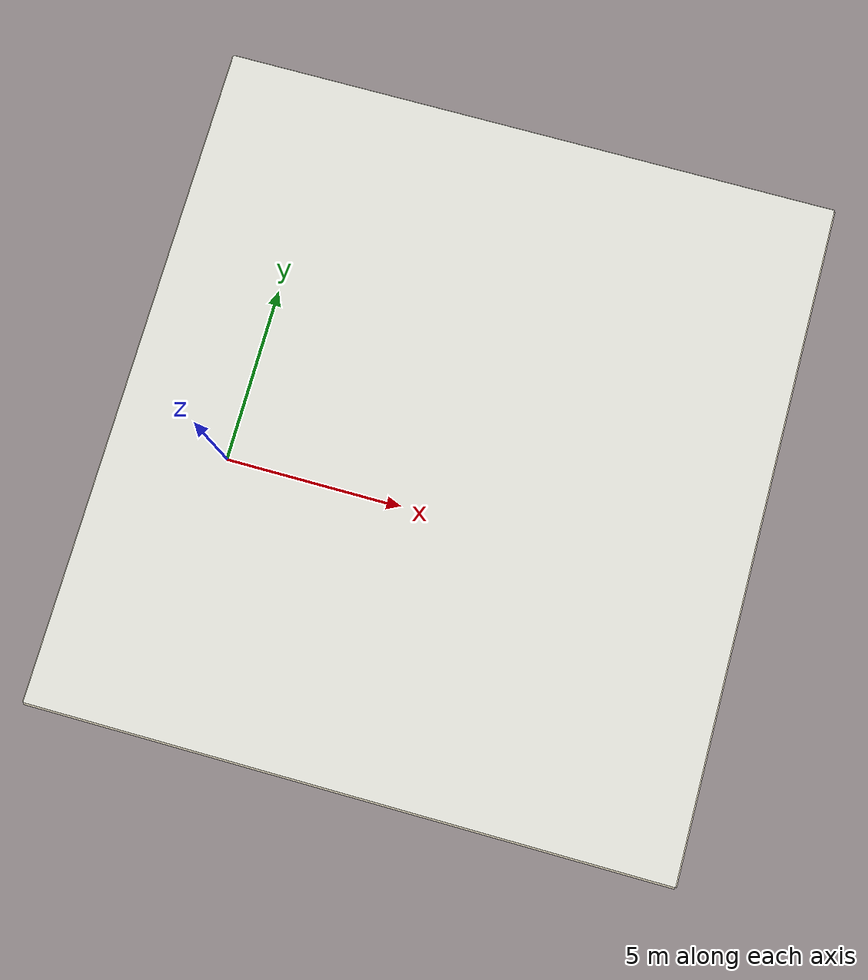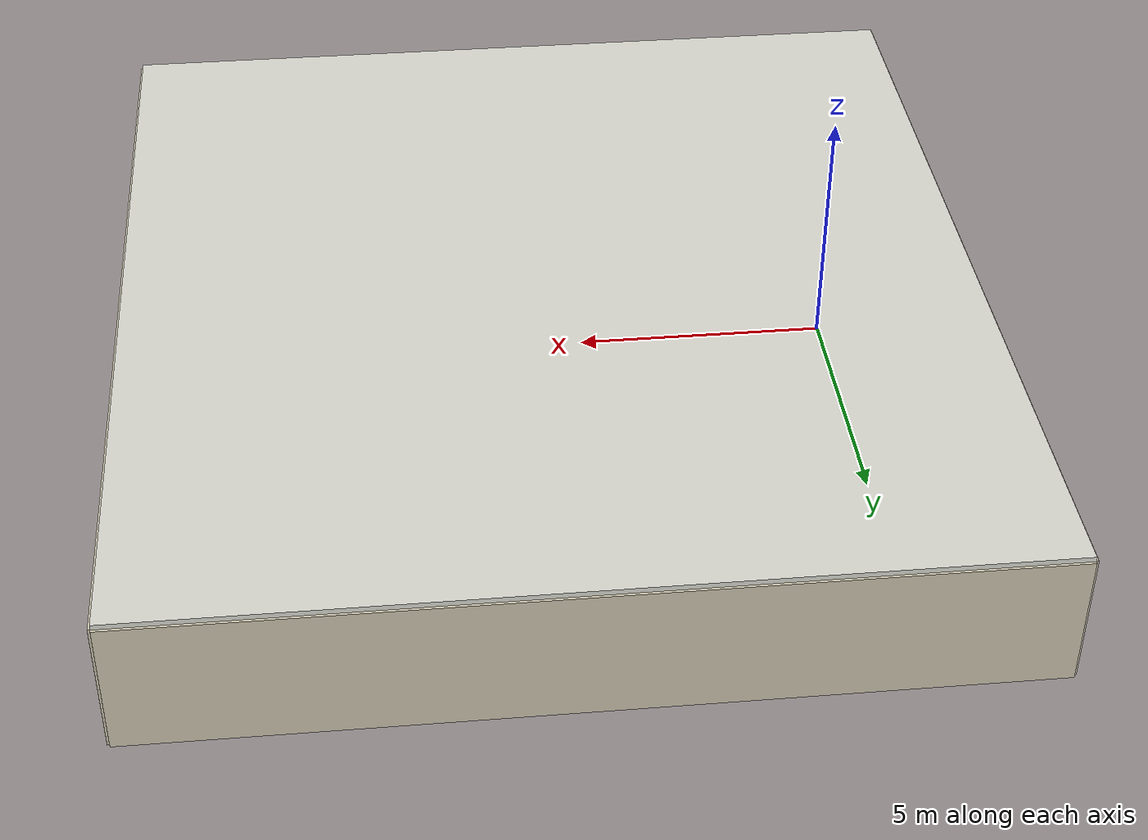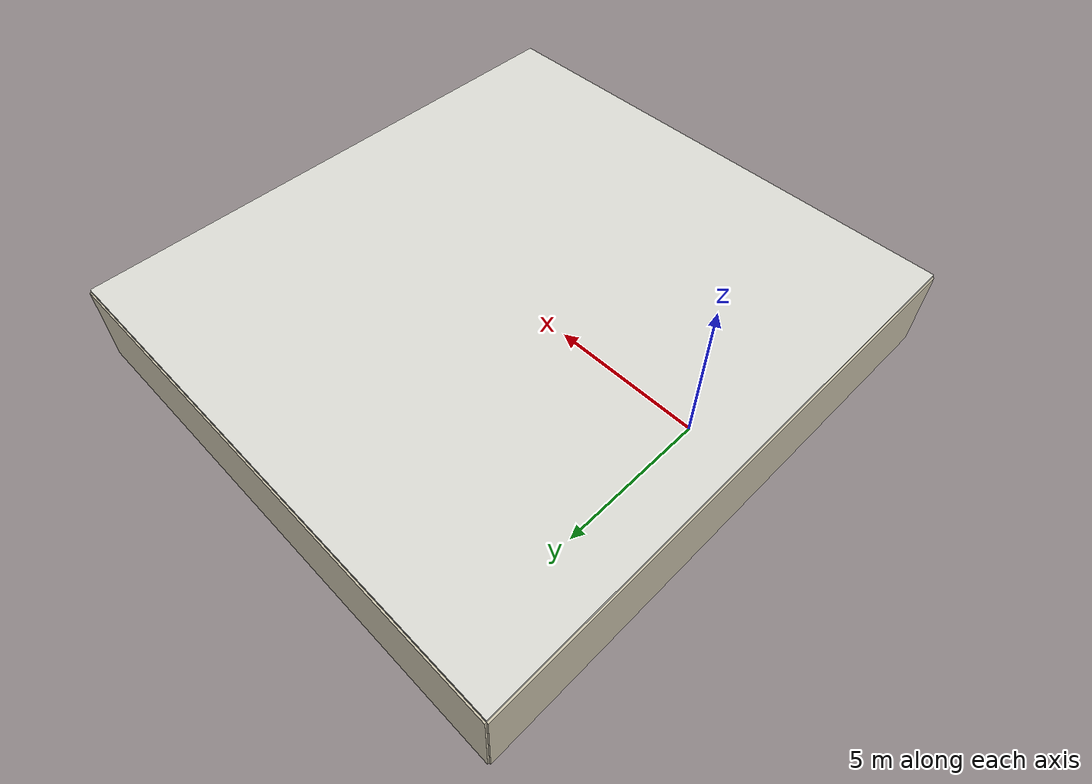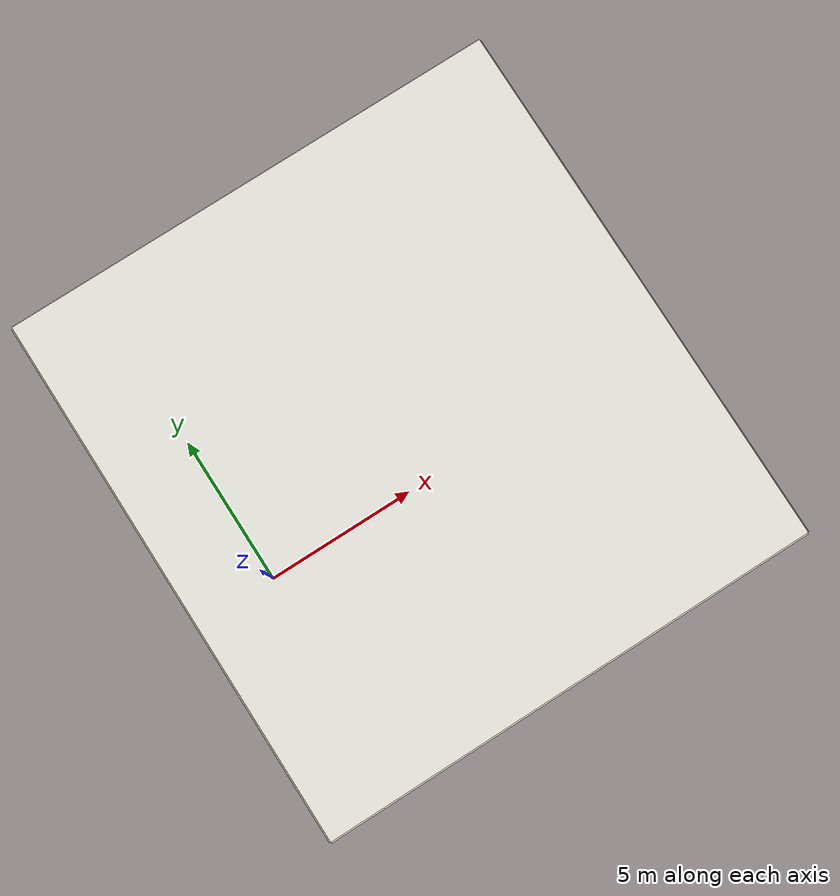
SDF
<?xml version="1.0" ?>
<sdf version='1.7'>
  <world name='default'>
    <plugin name='gazebo_ros_state' filename='libgazebo_ros_state.so'>
      <ros>
        <namespace>/</namespace>
      </ros>
      <update_rate>1000.0</update_rate>
    </plugin>

    <light name='sun' type='directional'>
      <cast_shadows>1</cast_shadows>
      <pose>0 0 10 0 -0 0</pose>
      <diffuse>0.34 0.34 0.33 1</diffuse>
      <specular>0.2 0.2 0.2 1</specular>
      <attenuation>
        <range>1000</range>
        <constant>0.9</constant>
        <linear>0.01</linear>
        <quadratic>0.001</quadratic>
      </attenuation>
      <direction>0.05 0.02 -1.0</direction>
      <spot>
        <inner_angle>0</inner_angle>
        <outer_angle>0</outer_angle>
        <falloff>0</falloff>
      </spot>
    </light>
    <model name='ground_plane'>
      <static>1</static>
      <link name='link'>
        <collision name='collision'>
          <geometry>
            <plane>
              <normal>0 0 1</normal>
              <size>100 100</size>
            </plane>
          </geometry>
          <surface>
            <friction>
              <ode>
                <mu>100</mu>
                <mu2>50</mu2>
              </ode>
              <torsional>
                <ode/>
              </torsional>
            </friction>
            <contact>
              <ode/>
            </contact>
            <bounce/>
          </surface>
          <max_contacts>10</max_contacts>
        </collision>
        <self_collide>0</self_collide>
        <enable_wind>0</enable_wind>
        <kinematic>0</kinematic>
      </link>
    </model>
    <gravity>0 0 -9.8</gravity>
    <magnetic_field>6e-06 2.3e-05 -4.2e-05</magnetic_field>
    <atmosphere type='adiabatic'/>
    <physics type='ode'>
      <max_step_size>0.001</max_step_size>
      <real_time_factor>1</real_time_factor>
      <real_time_update_rate>1000</real_time_update_rate>
    </physics>
    <scene>
      <ambient>0.74 0.74 0.72 1</ambient>
      <background>0.80 0.77 0.68 1</background>
      <shadows>1</shadows>
    </scene>
    <audio>
      <device>default</device>
    </audio>
    <wind/>
    <spherical_coordinates>
      <surface_model>EARTH_WGS84</surface_model>
      <latitude_deg>0</latitude_deg>
      <longitude_deg>0</longitude_deg>
      <elevation>0</elevation>
      <heading_deg>0</heading_deg>
    </spherical_coordinates>
    <model name='lab_19'>
    <static>1</static>
    <pose>0 0 0.001 0 0 0</pose>
    <link name='floor'>
      <visual name='floor_visual'>
        <cast_shadows>0</cast_shadows>
        <geometry><mesh><uri>model://lab_19/meshes/floor.obj</uri></mesh></geometry>
      </visual>
    </link>
    <link name='ducts'>
      <visual name='ducts_visual'>
        <geometry><mesh><uri>model://lab_19/meshes/ducts.obj</uri></mesh></geometry>
      </visual>
      <collision name='ducts_collision'>
        <geometry><mesh><uri>model://lab_19/meshes/ducts.obj</uri></mesh></geometry>
      </collision>
    </link>
    <link name='wall_0'>
      <pose>5.798 10.311 1.350 0 0 0.000</pose>
      <visual name='wall_0_visual'>
        <cast_shadows>0</cast_shadows>
        <geometry><box><size>16.623 0.100 2.700</size></box></geometry>
        <material><ambient>0.80 0.77 0.68 1</ambient><diffuse>0.80 0.77 0.68 1</diffuse></material>
      </visual>
    </link>
    <link name='wall_1'>
      <pose>5.798 -7.554 1.350 0 0 0.000</pose>
      <visual name='wall_1_visual'>
        <cast_shadows>0</cast_shadows>
        <geometry><box><size>16.623 0.100 2.700</size></box></geometry>
        <material><ambient>0.80 0.77 0.68 1</ambient><diffuse>0.80 0.77 0.68 1</diffuse></material>
      </visual>
    </link>
    <link name='wall_2'>
      <pose>-2.513 1.379 1.350 0 0 0.000</pose>
      <visual name='wall_2_visual'>
        <cast_shadows>0</cast_shadows>
        <geometry><box><size>0.100 17.864 2.700</size></box></geometry>
        <material><ambient>0.80 0.77 0.68 1</ambient><diffuse>0.80 0.77 0.68 1</diffuse></material>
      </visual>
    </link>
    <link name='wall_3'>
      <pose>14.110 1.379 1.350 0 0 0.000</pose>
      <visual name='wall_3_visual'>
        <cast_shadows>0</cast_shadows>
        <geometry><box><size>0.100 17.864 2.700</size></box></geometry>
        <material><ambient>0.80 0.77 0.68 1</ambient><diffuse>0.80 0.77 0.68 1</diffuse></material>
      </visual>
    </link>
    <link name='ceiling'>
      <pose>5.798 1.379 2.750 0 0 0.000</pose>
      <visual name='ceiling_visual'>
        <cast_shadows>0</cast_shadows>
        <geometry><box><size>16.623 17.864 0.100</size></box></geometry>
        <material><ambient>0.85 0.85 0.82 1</ambient><diffuse>0.85 0.85 0.82 1</diffuse></material>
      </visual>
    </link>
    <link name='panel_0_0'>
      <pose>-1.013 -6.054 2.690 0 0 0.000</pose>
      <visual name='panel_0_0_visual'>
        <cast_shadows>0</cast_shadows>
        <geometry><box><size>1.200 0.600 0.020</size></box></geometry>
        <material><ambient>1.00 1.00 1.00 1</ambient><diffuse>1.00 1.00 1.00 1</diffuse><emissive>1.00 1.00 1.00 1</emissive></material>
      </visual>
    </link>
    <link name='panel_0_1'>
      <pose>-1.013 -3.654 2.690 0 0 0.000</pose>
      <visual name='panel_0_1_visual'>
        <cast_shadows>0</cast_shadows>
        <geometry><box><size>1.200 0.600 0.020</size></box></geometry>
        <material><ambient>1.00 1.00 1.00 1</ambient><diffuse>1.00 1.00 1.00 1</diffuse><emissive>1.00 1.00 1.00 1</emissive></material>
      </visual>
    </link>
    <link name='panel_0_2'>
      <pose>-1.013 -1.254 2.690 0 0 0.000</pose>
      <visual name='panel_0_2_visual'>
        <cast_shadows>0</cast_shadows>
        <geometry><box><size>1.200 0.600 0.020</size></box></geometry>
        <material><ambient>1.00 1.00 1.00 1</ambient><diffuse>1.00 1.00 1.00 1</diffuse><emissive>1.00 1.00 1.00 1</emissive></material>
      </visual>
    </link>
    <link name='panel_0_3'>
      <pose>-1.013 1.146 2.690 0 0 0.000</pose>
      <visual name='panel_0_3_visual'>
        <cast_shadows>0</cast_shadows>
        <geometry><box><size>1.200 0.600 0.020</size></box></geometry>
        <material><ambient>1.00 1.00 1.00 1</ambient><diffuse>1.00 1.00 1.00 1</diffuse><emissive>1.00 1.00 1.00 1</emissive></material>
      </visual>
    </link>
    <link name='panel_0_4'>
      <pose>-1.013 3.546 2.690 0 0 0.000</pose>
      <visual name='panel_0_4_visual'>
        <cast_shadows>0</cast_shadows>
        <geometry><box><size>1.200 0.600 0.020</size></box></geometry>
        <material><ambient>1.00 1.00 1.00 1</ambient><diffuse>1.00 1.00 1.00 1</diffuse><emissive>1.00 1.00 1.00 1</emissive></material>
      </visual>
    </link>
    <link name='panel_0_5'>
      <pose>-1.013 5.946 2.690 0 0 0.000</pose>
      <visual name='panel_0_5_visual'>
        <cast_shadows>0</cast_shadows>
        <geometry><box><size>1.200 0.600 0.020</size></box></geometry>
        <material><ambient>1.00 1.00 1.00 1</ambient><diffuse>1.00 1.00 1.00 1</diffuse><emissive>1.00 1.00 1.00 1</emissive></material>
      </visual>
    </link>
    <link name='panel_0_6'>
      <pose>-1.013 8.346 2.690 0 0 0.000</pose>
      <visual name='panel_0_6_visual'>
        <cast_shadows>0</cast_shadows>
        <geometry><box><size>1.200 0.600 0.020</size></box></geometry>
        <material><ambient>1.00 1.00 1.00 1</ambient><diffuse>1.00 1.00 1.00 1</diffuse><emissive>1.00 1.00 1.00 1</emissive></material>
      </visual>
    </link>
    <link name='panel_1_0'>
      <pose>1.387 -6.054 2.690 0 0 0.000</pose>
      <visual name='panel_1_0_visual'>
        <cast_shadows>0</cast_shadows>
        <geometry><box><size>1.200 0.600 0.020</size></box></geometry>
        <material><ambient>1.00 1.00 1.00 1</ambient><diffuse>1.00 1.00 1.00 1</diffuse><emissive>1.00 1.00 1.00 1</emissive></material>
      </visual>
    </link>
    <link name='panel_1_1'>
      <pose>1.387 -3.654 2.690 0 0 0.000</pose>
      <visual name='panel_1_1_visual'>
        <cast_shadows>0</cast_shadows>
        <geometry><box><size>1.200 0.600 0.020</size></box></geometry>
        <material><ambient>1.00 1.00 1.00 1</ambient><diffuse>1.00 1.00 1.00 1</diffuse><emissive>1.00 1.00 1.00 1</emissive></material>
      </visual>
    </link>
    <link name='panel_1_2'>
      <pose>1.387 -1.254 2.690 0 0 0.000</pose>
      <visual name='panel_1_2_visual'>
        <cast_shadows>0</cast_shadows>
        <geometry><box><size>1.200 0.600 0.020</size></box></geometry>
        <material><ambient>1.00 1.00 1.00 1</ambient><diffuse>1.00 1.00 1.00 1</diffuse><emissive>1.00 1.00 1.00 1</emissive></material>
      </visual>
    </link>
    <link name='panel_1_3'>
      <pose>1.387 1.146 2.690 0 0 0.000</pose>
      <visual name='panel_1_3_visual'>
        <cast_shadows>0</cast_shadows>
        <geometry><box><size>1.200 0.600 0.020</size></box></geometry>
        <material><ambient>1.00 1.00 1.00 1</ambient><diffuse>1.00 1.00 1.00 1</diffuse><emissive>1.00 1.00 1.00 1</emissive></material>
      </visual>
    </link>
    <link name='panel_1_4'>
      <pose>1.387 3.546 2.690 0 0 0.000</pose>
      <visual name='panel_1_4_visual'>
        <cast_shadows>0</cast_shadows>
        <geometry><box><size>1.200 0.600 0.020</size></box></geometry>
        <material><ambient>1.00 1.00 1.00 1</ambient><diffuse>1.00 1.00 1.00 1</diffuse><emissive>1.00 1.00 1.00 1</emissive></material>
      </visual>
    </link>
    <link name='panel_1_5'>
      <pose>1.387 5.946 2.690 0 0 0.000</pose>
      <visual name='panel_1_5_visual'>
        <cast_shadows>0</cast_shadows>
        <geometry><box><size>1.200 0.600 0.020</size></box></geometry>
        <material><ambient>1.00 1.00 1.00 1</ambient><diffuse>1.00 1.00 1.00 1</diffuse><emissive>1.00 1.00 1.00 1</emissive></material>
      </visual>
    </link>
    <link name='panel_1_6'>
      <pose>1.387 8.346 2.690 0 0 0.000</pose>
      <visual name='panel_1_6_visual'>
        <cast_shadows>0</cast_shadows>
        <geometry><box><size>1.200 0.600 0.020</size></box></geometry>
        <material><ambient>1.00 1.00 1.00 1</ambient><diffuse>1.00 1.00 1.00 1</diffuse><emissive>1.00 1.00 1.00 1</emissive></material>
      </visual>
    </link>
    <link name='panel_2_0'>
      <pose>3.787 -6.054 2.690 0 0 0.000</pose>
      <visual name='panel_2_0_visual'>
        <cast_shadows>0</cast_shadows>
        <geometry><box><size>1.200 0.600 0.020</size></box></geometry>
        <material><ambient>1.00 1.00 1.00 1</ambient><diffuse>1.00 1.00 1.00 1</diffuse><emissive>1.00 1.00 1.00 1</emissive></material>
      </visual>
    </link>
    <link name='panel_2_1'>
      <pose>3.787 -3.654 2.690 0 0 0.000</pose>
      <visual name='panel_2_1_visual'>
        <cast_shadows>0</cast_shadows>
        <geometry><box><size>1.200 0.600 0.020</size></box></geometry>
        <material><ambient>1.00 1.00 1.00 1</ambient><diffuse>1.00 1.00 1.00 1</diffuse><emissive>1.00 1.00 1.00 1</emissive></material>
      </visual>
    </link>
    <link name='panel_2_2'>
      <pose>3.787 -1.254 2.690 0 0 0.000</pose>
      <visual name='panel_2_2_visual'>
        <cast_shadows>0</cast_shadows>
        <geometry><box><size>1.200 0.600 0.020</size></box></geometry>
        <material><ambient>1.00 1.00 1.00 1</ambient><diffuse>1.00 1.00 1.00 1</diffuse><emissive>1.00 1.00 1.00 1</emissive></material>
      </visual>
    </link>
    <link name='panel_2_3'>
      <pose>3.787 1.146 2.690 0 0 0.000</pose>
      <visual name='panel_2_3_visual'>
        <cast_shadows>0</cast_shadows>
        <geometry><box><size>1.200 0.600 0.020</size></box></geometry>
        <material><ambient>1.00 1.00 1.00 1</ambient><diffuse>1.00 1.00 1.00 1</diffuse><emissive>1.00 1.00 1.00 1</emissive></material>
      </visual>
    </link>
    <link name='panel_2_4'>
      <pose>3.787 3.546 2.690 0 0 0.000</pose>
      <visual name='panel_2_4_visual'>
        <cast_shadows>0</cast_shadows>
        <geometry><box><size>1.200 0.600 0.020</size></box></geometry>
        <material><ambient>1.00 1.00 1.00 1</ambient><diffuse>1.00 1.00 1.00 1</diffuse><emissive>1.00 1.00 1.00 1</emissive></material>
      </visual>
    </link>
    <link name='panel_2_5'>
      <pose>3.787 5.946 2.690 0 0 0.000</pose>
      <visual name='panel_2_5_visual'>
        <cast_shadows>0</cast_shadows>
        <geometry><box><size>1.200 0.600 0.020</size></box></geometry>
        <material><ambient>1.00 1.00 1.00 1</ambient><diffuse>1.00 1.00 1.00 1</diffuse><emissive>1.00 1.00 1.00 1</emissive></material>
      </visual>
    </link>
    <link name='panel_2_6'>
      <pose>3.787 8.346 2.690 0 0 0.000</pose>
      <visual name='panel_2_6_visual'>
        <cast_shadows>0</cast_shadows>
        <geometry><box><size>1.200 0.600 0.020</size></box></geometry>
        <material><ambient>1.00 1.00 1.00 1</ambient><diffuse>1.00 1.00 1.00 1</diffuse><emissive>1.00 1.00 1.00 1</emissive></material>
      </visual>
    </link>
    <link name='panel_3_0'>
      <pose>6.187 -6.054 2.690 0 0 0.000</pose>
      <visual name='panel_3_0_visual'>
        <cast_shadows>0</cast_shadows>
        <geometry><box><size>1.200 0.600 0.020</size></box></geometry>
        <material><ambient>1.00 1.00 1.00 1</ambient><diffuse>1.00 1.00 1.00 1</diffuse><emissive>1.00 1.00 1.00 1</emissive></material>
      </visual>
    </link>
    <link name='panel_3_1'>
      <pose>6.187 -3.654 2.690 0 0 0.000</pose>
      <visual name='panel_3_1_visual'>
        <cast_shadows>0</cast_shadows>
        <geometry><box><size>1.200 0.600 0.020</size></box></geometry>
        <material><ambient>1.00 1.00 1.00 1</ambient><diffuse>1.00 1.00 1.00 1</diffuse><emissive>1.00 1.00 1.00 1</emissive></material>
      </visual>
    </link>
    <link name='panel_3_2'>
      <pose>6.187 -1.254 2.690 0 0 0.000</pose>
      <visual name='panel_3_2_visual'>
        <cast_shadows>0</cast_shadows>
        <geometry><box><size>1.200 0.600 0.020</size></box></geometry>
        <material><ambient>1.00 1.00 1.00 1</ambient><diffuse>1.00 1.00 1.00 1</diffuse><emissive>1.00 1.00 1.00 1</emissive></material>
      </visual>
    </link>
    <link name='panel_3_3'>
      <pose>6.187 1.146 2.690 0 0 0.000</pose>
      <visual name='panel_3_3_visual'>
        <cast_shadows>0</cast_shadows>
        <geometry><box><size>1.200 0.600 0.020</size></box></geometry>
        <material><ambient>1.00 1.00 1.00 1</ambient><diffuse>1.00 1.00 1.00 1</diffuse><emissive>1.00 1.00 1.00 1</emissive></material>
      </visual>
    </link>
    <link name='panel_3_4'>
      <pose>6.187 3.546 2.690 0 0 0.000</pose>
      <visual name='panel_3_4_visual'>
        <cast_shadows>0</cast_shadows>
        <geometry><box><size>1.200 0.600 0.020</size></box></geometry>
        <material><ambient>1.00 1.00 1.00 1</ambient><diffuse>1.00 1.00 1.00 1</diffuse><emissive>1.00 1.00 1.00 1</emissive></material>
      </visual>
    </link>
    <link name='panel_3_5'>
      <pose>6.187 5.946 2.690 0 0 0.000</pose>
      <visual name='panel_3_5_visual'>
        <cast_shadows>0</cast_shadows>
        <geometry><box><size>1.200 0.600 0.020</size></box></geometry>
        <material><ambient>1.00 1.00 1.00 1</ambient><diffuse>1.00 1.00 1.00 1</diffuse><emissive>1.00 1.00 1.00 1</emissive></material>
      </visual>
    </link>
    <link name='panel_3_6'>
      <pose>6.187 8.346 2.690 0 0 0.000</pose>
      <visual name='panel_3_6_visual'>
        <cast_shadows>0</cast_shadows>
        <geometry><box><size>1.200 0.600 0.020</size></box></geometry>
        <material><ambient>1.00 1.00 1.00 1</ambient><diffuse>1.00 1.00 1.00 1</diffuse><emissive>1.00 1.00 1.00 1</emissive></material>
      </visual>
    </link>
    <link name='panel_4_0'>
      <pose>8.587 -6.054 2.690 0 0 0.000</pose>
      <visual name='panel_4_0_visual'>
        <cast_shadows>0</cast_shadows>
        <geometry><box><size>1.200 0.600 0.020</size></box></geometry>
        <material><ambient>1.00 1.00 1.00 1</ambient><diffuse>1.00 1.00 1.00 1</diffuse><emissive>1.00 1.00 1.00 1</emissive></material>
      </visual>
    </link>
    <link name='panel_4_1'>
      <pose>8.587 -3.654 2.690 0 0 0.000</pose>
      <visual name='panel_4_1_visual'>
        <cast_shadows>0</cast_shadows>
        <geometry><box><size>1.200 0.600 0.020</size></box></geometry>
        <material><ambient>1.00 1.00 1.00 1</ambient><diffuse>1.00 1.00 1.00 1</diffuse><emissive>1.00 1.00 1.00 1</emissive></material>
      </visual>
    </link>
    <link name='panel_4_2'>
      <pose>8.587 -1.254 2.690 0 0 0.000</pose>
      <visual name='panel_4_2_visual'>
        <cast_shadows>0</cast_shadows>
        <geometry><box><size>1.200 0.600 0.020</size></box></geometry>
        <material><ambient>1.00 1.00 1.00 1</ambient><diffuse>1.00 1.00 1.00 1</diffuse><emissive>1.00 1.00 1.00 1</emissive></material>
      </visual>
    </link>
    <link name='panel_4_3'>
      <pose>8.587 1.146 2.690 0 0 0.000</pose>
      <visual name='panel_4_3_visual'>
        <cast_shadows>0</cast_shadows>
        <geometry><box><size>1.200 0.600 0.020</size></box></geometry>
        <material><ambient>1.00 1.00 1.00 1</ambient><diffuse>1.00 1.00 1.00 1</diffuse><emissive>1.00 1.00 1.00 1</emissive></material>
      </visual>
    </link>
    <link name='panel_4_4'>
      <pose>8.587 3.546 2.690 0 0 0.000</pose>
      <visual name='panel_4_4_visual'>
        <cast_shadows>0</cast_shadows>
        <geometry><box><size>1.200 0.600 0.020</size></box></geometry>
        <material><ambient>1.00 1.00 1.00 1</ambient><diffuse>1.00 1.00 1.00 1</diffuse><emissive>1.00 1.00 1.00 1</emissive></material>
      </visual>
    </link>
    <link name='panel_4_5'>
      <pose>8.587 5.946 2.690 0 0 0.000</pose>
      <visual name='panel_4_5_visual'>
        <cast_shadows>0</cast_shadows>
        <geometry><box><size>1.200 0.600 0.020</size></box></geometry>
        <material><ambient>1.00 1.00 1.00 1</ambient><diffuse>1.00 1.00 1.00 1</diffuse><emissive>1.00 1.00 1.00 1</emissive></material>
      </visual>
    </link>
    <link name='panel_4_6'>
      <pose>8.587 8.346 2.690 0 0 0.000</pose>
      <visual name='panel_4_6_visual'>
        <cast_shadows>0</cast_shadows>
        <geometry><box><size>1.200 0.600 0.020</size></box></geometry>
        <material><ambient>1.00 1.00 1.00 1</ambient><diffuse>1.00 1.00 1.00 1</diffuse><emissive>1.00 1.00 1.00 1</emissive></material>
      </visual>
    </link>
    <link name='panel_5_0'>
      <pose>10.987 -6.054 2.690 0 0 0.000</pose>
      <visual name='panel_5_0_visual'>
        <cast_shadows>0</cast_shadows>
        <geometry><box><size>1.200 0.600 0.020</size></box></geometry>
        <material><ambient>1.00 1.00 1.00 1</ambient><diffuse>1.00 1.00 1.00 1</diffuse><emissive>1.00 1.00 1.00 1</emissive></material>
      </visual>
    </link>
    <link name='panel_5_1'>
      <pose>10.987 -3.654 2.690 0 0 0.000</pose>
      <visual name='panel_5_1_visual'>
        <cast_shadows>0</cast_shadows>
        <geometry><box><size>1.200 0.600 0.020</size></box></geometry>
        <material><ambient>1.00 1.00 1.00 1</ambient><diffuse>1.00 1.00 1.00 1</diffuse><emissive>1.00 1.00 1.00 1</emissive></material>
      </visual>
    </link>
    <link name='panel_5_2'>
      <pose>10.987 -1.254 2.690 0 0 0.000</pose>
      <visual name='panel_5_2_visual'>
        <cast_shadows>0</cast_shadows>
        <geometry><box><size>1.200 0.600 0.020</size></box></geometry>
        <material><ambient>1.00 1.00 1.00 1</ambient><diffuse>1.00 1.00 1.00 1</diffuse><emissive>1.00 1.00 1.00 1</emissive></material>
      </visual>
    </link>
    <link name='panel_5_3'>
      <pose>10.987 1.146 2.690 0 0 0.000</pose>
      <visual name='panel_5_3_visual'>
        <cast_shadows>0</cast_shadows>
        <geometry><box><size>1.200 0.600 0.020</size></box></geometry>
        <material><ambient>1.00 1.00 1.00 1</ambient><diffuse>1.00 1.00 1.00 1</diffuse><emissive>1.00 1.00 1.00 1</emissive></material>
      </visual>
    </link>
    <link name='panel_5_4'>
      <pose>10.987 3.546 2.690 0 0 0.000</pose>
      <visual name='panel_5_4_visual'>
        <cast_shadows>0</cast_shadows>
        <geometry><box><size>1.200 0.600 0.020</size></box></geometry>
        <material><ambient>1.00 1.00 1.00 1</ambient><diffuse>1.00 1.00 1.00 1</diffuse><emissive>1.00 1.00 1.00 1</emissive></material>
      </visual>
    </link>
    <link name='panel_5_5'>
      <pose>10.987 5.946 2.690 0 0 0.000</pose>
      <visual name='panel_5_5_visual'>
        <cast_shadows>0</cast_shadows>
        <geometry><box><size>1.200 0.600 0.020</size></box></geometry>
        <material><ambient>1.00 1.00 1.00 1</ambient><diffuse>1.00 1.00 1.00 1</diffuse><emissive>1.00 1.00 1.00 1</emissive></material>
      </visual>
    </link>
    <link name='panel_5_6'>
      <pose>10.987 8.346 2.690 0 0 0.000</pose>
      <visual name='panel_5_6_visual'>
        <cast_shadows>0</cast_shadows>
        <geometry><box><size>1.200 0.600 0.020</size></box></geometry>
        <material><ambient>1.00 1.00 1.00 1</ambient><diffuse>1.00 1.00 1.00 1</diffuse><emissive>1.00 1.00 1.00 1</emissive></material>
      </visual>
    </link>
    <link name='p0'>
      <pose>-1.131 9.876 0.375 0 0 0.000</pose>
      <visual name='p0_visual'>
        <cast_shadows>0</cast_shadows>
        <geometry><box><size>1.500 0.750 0.750</size></box></geometry>
        <material><ambient>0.32 0.32 0.33 1</ambient><diffuse>0.32 0.32 0.33 1</diffuse></material>
      </visual>
    </link>
    <link name='p1'>
      <pose>0.972 9.876 0.375 0 0 0.000</pose>
      <visual name='p1_visual'>
        <cast_shadows>0</cast_shadows>
        <geometry><box><size>1.500 0.750 0.750</size></box></geometry>
        <material><ambient>0.32 0.32 0.33 1</ambient><diffuse>0.32 0.32 0.33 1</diffuse></material>
      </visual>
    </link>
    <link name='p2'>
      <pose>3.756 10.001 0.225 0 0 0.000</pose>
      <visual name='p2_visual'>
        <cast_shadows>0</cast_shadows>
        <geometry><box><size>0.600 0.500 0.450</size></box></geometry>
        <material><ambient>0.62 0.45 0.28 1</ambient><diffuse>0.62 0.45 0.28 1</diffuse></material>
      </visual>
    </link>
    <link name='p3'>
      <pose>3.756 10.001 0.675 0 0 0.000</pose>
      <visual name='p3_visual'>
        <cast_shadows>0</cast_shadows>
        <geometry><box><size>0.600 0.500 0.450</size></box></geometry>
        <material><ambient>0.62 0.45 0.28 1</ambient><diffuse>0.62 0.45 0.28 1</diffuse></material>
      </visual>
    </link>
    <link name='p4'>
      <pose>3.756 10.001 1.125 0 0 0.000</pose>
      <visual name='p4_visual'>
        <cast_shadows>0</cast_shadows>
        <geometry><box><size>0.600 0.500 0.450</size></box></geometry>
        <material><ambient>0.62 0.45 0.28 1</ambient><diffuse>0.62 0.45 0.28 1</diffuse></material>
      </visual>
    </link>
    <link name='p5'>
      <pose>5.117 10.226 0.375 0 0 0.000</pose>
      <visual name='p5_visual'>
        <cast_shadows>0</cast_shadows>
        <geometry><box><size>1.800 0.050 0.750</size></box></geometry>
        <material><ambient>0.93 0.93 0.92 1</ambient><diffuse>0.93 0.93 0.92 1</diffuse></material>
      </visual>
    </link>
    <link name='p6'>
      <pose>8.387 10.226 0.375 0 0 0.000</pose>
      <visual name='p6_visual'>
        <cast_shadows>0</cast_shadows>
        <geometry><box><size>1.800 0.050 0.750</size></box></geometry>
        <material><ambient>0.93 0.93 0.92 1</ambient><diffuse>0.93 0.93 0.92 1</diffuse></material>
      </visual>
    </link>
    <link name='p7'>
      <pose>11.404 9.876 0.375 0 0 0.000</pose>
      <visual name='p7_visual'>
        <cast_shadows>0</cast_shadows>
        <geometry><box><size>1.500 0.750 0.750</size></box></geometry>
        <material><ambient>0.32 0.32 0.33 1</ambient><diffuse>0.32 0.32 0.33 1</diffuse></material>
      </visual>
    </link>
    <link name='p8'>
      <pose>13.675 -3.840 0.375 0 0 0.000</pose>
      <visual name='p8_visual'>
        <cast_shadows>0</cast_shadows>
        <geometry><box><size>0.750 1.500 0.750</size></box></geometry>
        <material><ambient>0.32 0.32 0.33 1</ambient><diffuse>0.32 0.32 0.33 1</diffuse></material>
      </visual>
    </link>
    <link name='p9'>
      <pose>13.675 -1.098 0.375 0 0 0.000</pose>
      <visual name='p9_visual'>
        <cast_shadows>0</cast_shadows>
        <geometry><box><size>0.750 1.500 0.750</size></box></geometry>
        <material><ambient>0.32 0.32 0.33 1</ambient><diffuse>0.32 0.32 0.33 1</diffuse></material>
      </visual>
    </link>
    <link name='p10'>
      <pose>13.825 0.992 0.925 0 0 0.000</pose>
      <visual name='p10_visual'>
        <cast_shadows>0</cast_shadows>
        <geometry><box><size>0.450 0.300 1.850</size></box></geometry>
        <material><ambient>0.55 0.57 0.58 1</ambient><diffuse>0.55 0.57 0.58 1</diffuse></material>
      </visual>
    </link>
    <link name='p11'>
      <pose>13.825 1.302 0.925 0 0 0.000</pose>
      <visual name='p11_visual'>
        <cast_shadows>0</cast_shadows>
        <geometry><box><size>0.450 0.300 1.850</size></box></geometry>
        <material><ambient>0.55 0.57 0.58 1</ambient><diffuse>0.55 0.57 0.58 1</diffuse></material>
      </visual>
    </link>
    <link name='p12'>
      <pose>13.825 1.612 0.925 0 0 0.000</pose>
      <visual name='p12_visual'>
        <cast_shadows>0</cast_shadows>
        <geometry><box><size>0.450 0.300 1.850</size></box></geometry>
        <material><ambient>0.55 0.57 0.58 1</ambient><diffuse>0.55 0.57 0.58 1</diffuse></material>
      </visual>
    </link>
    <link name='p13'>
      <pose>13.825 1.922 0.925 0 0 0.000</pose>
      <visual name='p13_visual'>
        <cast_shadows>0</cast_shadows>
        <geometry><box><size>0.450 0.300 1.850</size></box></geometry>
        <material><ambient>0.55 0.57 0.58 1</ambient><diffuse>0.55 0.57 0.58 1</diffuse></material>
      </visual>
    </link>
    <link name='p14'>
      <pose>13.825 2.232 0.925 0 0 0.000</pose>
      <visual name='p14_visual'>
        <cast_shadows>0</cast_shadows>
        <geometry><box><size>0.450 0.300 1.850</size></box></geometry>
        <material><ambient>0.55 0.57 0.58 1</ambient><diffuse>0.55 0.57 0.58 1</diffuse></material>
      </visual>
    </link>
    <link name='p15'>
      <pose>13.825 2.542 0.925 0 0 0.000</pose>
      <visual name='p15_visual'>
        <cast_shadows>0</cast_shadows>
        <geometry><box><size>0.450 0.300 1.850</size></box></geometry>
        <material><ambient>0.55 0.57 0.58 1</ambient><diffuse>0.55 0.57 0.58 1</diffuse></material>
      </visual>
    </link>
    <link name='p16'>
      <pose>14.025 5.284 0.375 0 0 0.000</pose>
      <visual name='p16_visual'>
        <cast_shadows>0</cast_shadows>
        <geometry><box><size>0.050 1.800 0.750</size></box></geometry>
        <material><ambient>0.93 0.93 0.92 1</ambient><diffuse>0.93 0.93 0.92 1</diffuse></material>
      </visual>
    </link>
    <link name='p17'>
      <pose>13.675 8.144 0.375 0 0 0.000</pose>
      <visual name='p17_visual'>
        <cast_shadows>0</cast_shadows>
        <geometry><box><size>0.750 1.500 0.750</size></box></geometry>
        <material><ambient>0.32 0.32 0.33 1</ambient><diffuse>0.32 0.32 0.33 1</diffuse></material>
      </visual>
    </link>
    <link name='p18'>
      <pose>0.221 -7.244 0.650 0 0 0.000</pose>
      <visual name='p18_visual'>
        <cast_shadows>0</cast_shadows>
        <geometry><box><size>0.900 0.500 1.300</size></box></geometry>
        <material><ambient>0.25 0.33 0.36 1</ambient><diffuse>0.25 0.33 0.36 1</diffuse></material>
      </visual>
    </link>
    <link name='p19'>
      <pose>1.745 -7.119 0.375 0 0 0.000</pose>
      <visual name='p19_visual'>
        <cast_shadows>0</cast_shadows>
        <geometry><box><size>1.500 0.750 0.750</size></box></geometry>
        <material><ambient>0.32 0.32 0.33 1</ambient><diffuse>0.32 0.32 0.33 1</diffuse></material>
      </visual>
    </link>
    <link name='p20'>
      <pose>4.580 -7.119 0.375 0 0 0.000</pose>
      <visual name='p20_visual'>
        <cast_shadows>0</cast_shadows>
        <geometry><box><size>1.500 0.750 0.750</size></box></geometry>
        <material><ambient>0.32 0.32 0.33 1</ambient><diffuse>0.32 0.32 0.33 1</diffuse></material>
      </visual>
    </link>
    <link name='p21'>
      <pose>6.852 -7.244 0.650 0 0 0.000</pose>
      <visual name='p21_visual'>
        <cast_shadows>0</cast_shadows>
        <geometry><box><size>0.900 0.500 1.300</size></box></geometry>
        <material><ambient>0.25 0.33 0.36 1</ambient><diffuse>0.25 0.33 0.36 1</diffuse></material>
      </visual>
    </link>
    <link name='p22'>
      <pose>8.366 -7.244 0.650 0 0 0.000</pose>
      <visual name='p22_visual'>
        <cast_shadows>0</cast_shadows>
        <geometry><box><size>0.900 0.500 1.300</size></box></geometry>
        <material><ambient>0.25 0.33 0.36 1</ambient><diffuse>0.25 0.33 0.36 1</diffuse></material>
      </visual>
    </link>
    <link name='p23'>
      <pose>10.797 -7.244 0.225 0 0 0.000</pose>
      <visual name='p23_visual'>
        <cast_shadows>0</cast_shadows>
        <geometry><box><size>0.600 0.500 0.450</size></box></geometry>
        <material><ambient>0.62 0.45 0.28 1</ambient><diffuse>0.62 0.45 0.28 1</diffuse></material>
      </visual>
    </link>
    <link name='p24'>
      <pose>10.797 -7.244 0.675 0 0 0.000</pose>
      <visual name='p24_visual'>
        <cast_shadows>0</cast_shadows>
        <geometry><box><size>0.600 0.500 0.450</size></box></geometry>
        <material><ambient>0.62 0.45 0.28 1</ambient><diffuse>0.62 0.45 0.28 1</diffuse></material>
      </visual>
    </link>
    <link name='p25'>
      <pose>12.419 -7.244 0.225 0 0 0.000</pose>
      <visual name='p25_visual'>
        <cast_shadows>0</cast_shadows>
        <geometry><box><size>0.600 0.500 0.450</size></box></geometry>
        <material><ambient>0.62 0.45 0.28 1</ambient><diffuse>0.62 0.45 0.28 1</diffuse></material>
      </visual>
    </link>
    <link name='p26'>
      <pose>-2.228 -6.266 0.925 0 0 0.000</pose>
      <visual name='p26_visual'>
        <cast_shadows>0</cast_shadows>
        <geometry><box><size>0.450 0.300 1.850</size></box></geometry>
        <material><ambient>0.55 0.57 0.58 1</ambient><diffuse>0.55 0.57 0.58 1</diffuse></material>
      </visual>
    </link>
    <link name='p27'>
      <pose>-2.228 -5.956 0.925 0 0 0.000</pose>
      <visual name='p27_visual'>
        <cast_shadows>0</cast_shadows>
        <geometry><box><size>0.450 0.300 1.850</size></box></geometry>
        <material><ambient>0.55 0.57 0.58 1</ambient><diffuse>0.55 0.57 0.58 1</diffuse></material>
      </visual>
    </link>
    <link name='p28'>
      <pose>-2.228 -5.646 0.925 0 0 0.000</pose>
      <visual name='p28_visual'>
        <cast_shadows>0</cast_shadows>
        <geometry><box><size>0.450 0.300 1.850</size></box></geometry>
        <material><ambient>0.55 0.57 0.58 1</ambient><diffuse>0.55 0.57 0.58 1</diffuse></material>
      </visual>
    </link>
    <link name='p29'>
      <pose>-2.228 -5.336 0.925 0 0 0.000</pose>
      <visual name='p29_visual'>
        <cast_shadows>0</cast_shadows>
        <geometry><box><size>0.450 0.300 1.850</size></box></geometry>
        <material><ambient>0.55 0.57 0.58 1</ambient><diffuse>0.55 0.57 0.58 1</diffuse></material>
      </visual>
    </link>
    <link name='p30'>
      <pose>-2.228 -5.026 0.925 0 0 0.000</pose>
      <visual name='p30_visual'>
        <cast_shadows>0</cast_shadows>
        <geometry><box><size>0.450 0.300 1.850</size></box></geometry>
        <material><ambient>0.55 0.57 0.58 1</ambient><diffuse>0.55 0.57 0.58 1</diffuse></material>
      </visual>
    </link>
    <link name='p31'>
      <pose>-2.228 -4.716 0.925 0 0 0.000</pose>
      <visual name='p31_visual'>
        <cast_shadows>0</cast_shadows>
        <geometry><box><size>0.450 0.300 1.850</size></box></geometry>
        <material><ambient>0.55 0.57 0.58 1</ambient><diffuse>0.55 0.57 0.58 1</diffuse></material>
      </visual>
    </link>
    <link name='p32'>
      <pose>-2.228 -4.406 0.925 0 0 0.000</pose>
      <visual name='p32_visual'>
        <cast_shadows>0</cast_shadows>
        <geometry><box><size>0.450 0.300 1.850</size></box></geometry>
        <material><ambient>0.55 0.57 0.58 1</ambient><diffuse>0.55 0.57 0.58 1</diffuse></material>
      </visual>
    </link>
    <link name='p33'>
      <pose>-2.228 -3.014 0.925 0 0 0.000</pose>
      <visual name='p33_visual'>
        <cast_shadows>0</cast_shadows>
        <geometry><box><size>0.450 0.300 1.850</size></box></geometry>
        <material><ambient>0.55 0.57 0.58 1</ambient><diffuse>0.55 0.57 0.58 1</diffuse></material>
      </visual>
    </link>
    <link name='p34'>
      <pose>-2.228 -2.704 0.925 0 0 0.000</pose>
      <visual name='p34_visual'>
        <cast_shadows>0</cast_shadows>
        <geometry><box><size>0.450 0.300 1.850</size></box></geometry>
        <material><ambient>0.55 0.57 0.58 1</ambient><diffuse>0.55 0.57 0.58 1</diffuse></material>
      </visual>
    </link>
    <link name='p35'>
      <pose>-2.228 -2.394 0.925 0 0 0.000</pose>
      <visual name='p35_visual'>
        <cast_shadows>0</cast_shadows>
        <geometry><box><size>0.450 0.300 1.850</size></box></geometry>
        <material><ambient>0.55 0.57 0.58 1</ambient><diffuse>0.55 0.57 0.58 1</diffuse></material>
      </visual>
    </link>
    <link name='p36'>
      <pose>-2.228 -2.084 0.925 0 0 0.000</pose>
      <visual name='p36_visual'>
        <cast_shadows>0</cast_shadows>
        <geometry><box><size>0.450 0.300 1.850</size></box></geometry>
        <material><ambient>0.55 0.57 0.58 1</ambient><diffuse>0.55 0.57 0.58 1</diffuse></material>
      </visual>
    </link>
    <link name='p37'>
      <pose>-2.228 -1.774 0.925 0 0 0.000</pose>
      <visual name='p37_visual'>
        <cast_shadows>0</cast_shadows>
        <geometry><box><size>0.450 0.300 1.850</size></box></geometry>
        <material><ambient>0.55 0.57 0.58 1</ambient><diffuse>0.55 0.57 0.58 1</diffuse></material>
      </visual>
    </link>
    <link name='p38'>
      <pose>-2.078 -0.082 0.375 0 0 0.000</pose>
      <visual name='p38_visual'>
        <cast_shadows>0</cast_shadows>
        <geometry><box><size>0.750 1.500 0.750</size></box></geometry>
        <material><ambient>0.32 0.32 0.33 1</ambient><diffuse>0.32 0.32 0.33 1</diffuse></material>
      </visual>
    </link>
    <link name='p39'>
      <pose>-2.428 2.721 0.375 0 0 0.000</pose>
      <visual name='p39_visual'>
        <cast_shadows>0</cast_shadows>
        <geometry><box><size>0.050 1.800 0.750</size></box></geometry>
        <material><ambient>0.93 0.93 0.92 1</ambient><diffuse>0.93 0.93 0.92 1</diffuse></material>
      </visual>
    </link>
    <link name='p40'>
      <pose>-2.428 5.516 0.375 0 0 0.000</pose>
      <visual name='p40_visual'>
        <cast_shadows>0</cast_shadows>
        <geometry><box><size>0.050 1.800 0.750</size></box></geometry>
        <material><ambient>0.93 0.93 0.92 1</ambient><diffuse>0.93 0.93 0.92 1</diffuse></material>
      </visual>
    </link>
    <link name='p41'>
      <pose>-2.203 8.074 0.225 0 0 0.000</pose>
      <visual name='p41_visual'>
        <cast_shadows>0</cast_shadows>
        <geometry><box><size>0.500 0.600 0.450</size></box></geometry>
        <material><ambient>0.62 0.45 0.28 1</ambient><diffuse>0.62 0.45 0.28 1</diffuse></material>
      </visual>
    </link>
  </model>
  </world>
</sdf>
